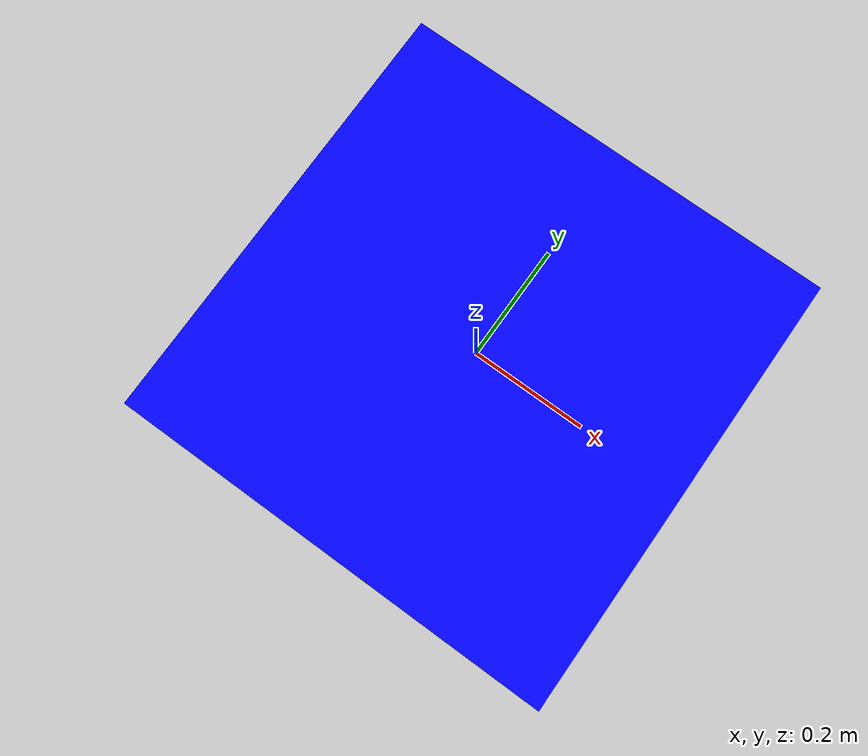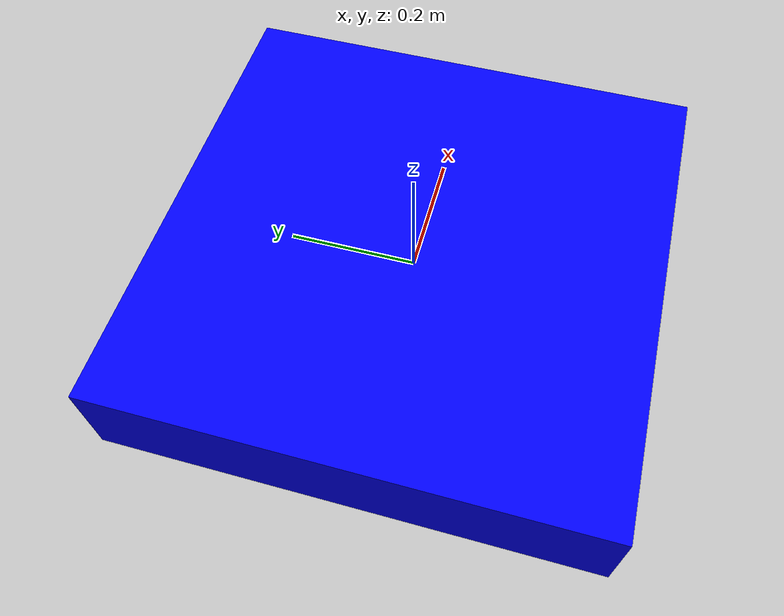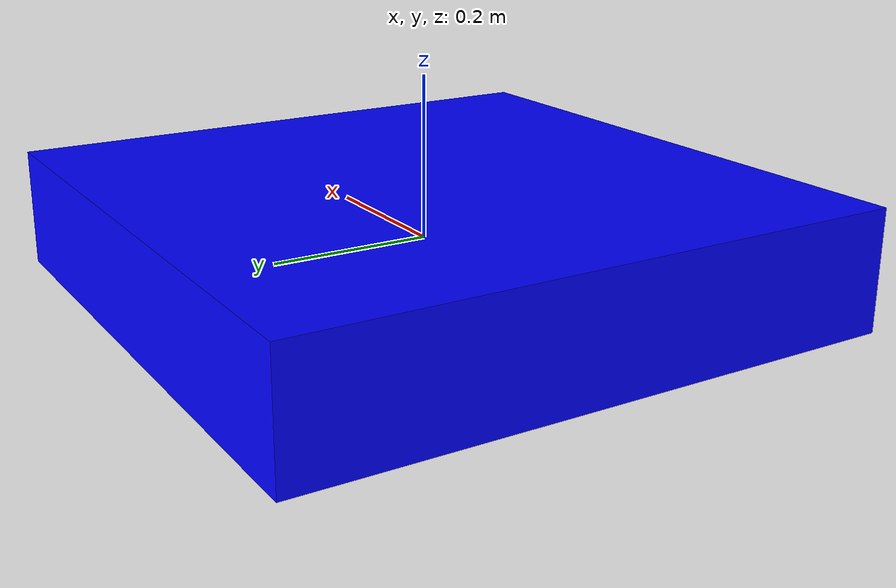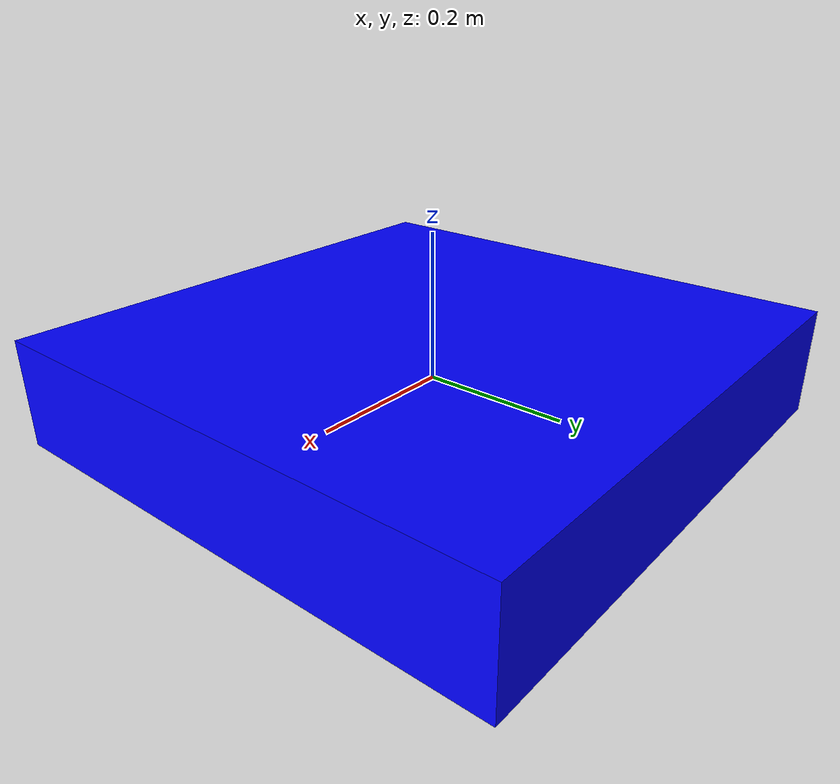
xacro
<?xml version="1.0"?>
<!-- Simple definition of 2 joints (motors) to test with -->
<robot xmlns:xacro="http://www.ros.org/wiki/xacro" name="ctrerobot">
	<xacro:property name="base_height" value=".15" />
	<xacro:property name="base_width" value=".75" />
	<xacro:property name="base_depth" value=".75" />

	<link name="base_link">
		<visual>
			<geometry>
				<box size="${base_width} ${base_depth} ${base_height}"/>
			</geometry>
			<material name="blue">
				<color rgba="0 0 1 1"/>
			</material>
		</visual>
	</link>
	<link name="link_1">
		<visual>
			<geometry>
				<box size="${base_width} ${base_depth} ${base_height}"/>
			</geometry>
			<material name="blue">
				<color rgba="0 0 1 1"/>
			</material>
		</visual>
	</link>
		<joint name="x_linear_joint" type="continuous">
			<parent link="base_link"/>
			<child link="link_1"/>
			<origin xyz="0 0 0" rpy="0 0 0"/>
		</joint>
	<link name="link_2">
		<visual>
			<geometry>
				<box size="${base_width} ${base_depth} ${base_height}"/>
			</geometry>
			<material name="blue">
				<color rgba="0 0 1 1"/>
			</material>
		</visual>
	</link>
		<joint name="y_linear_joint" type="continuous">
			<parent link="base_link"/>
			<child link="link_2"/>
			<origin xyz="0 0 0" rpy="0 0 0"/>
		</joint>
	<link name="link_3">
		<visual>
			<geometry>
				<box size="${base_width} ${base_depth} ${base_height}"/>
			</geometry>
			<material name="blue">
				<color rgba="0 0 1 1"/>
			</material>
		</visual>
	</link>
		<joint name="z_rotation_joint" type="continuous">
			<parent link="base_link"/>
			<child link="link_3"/>
			<origin xyz="0 0 0" rpy="0 0 0"/>
		</joint>
</robot>
